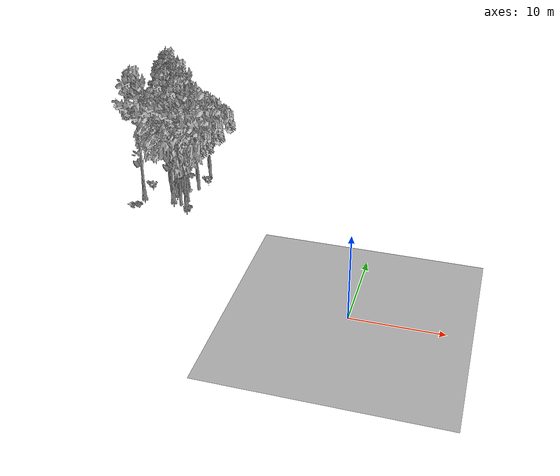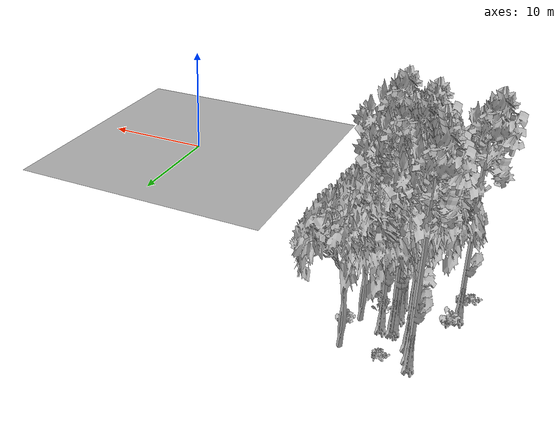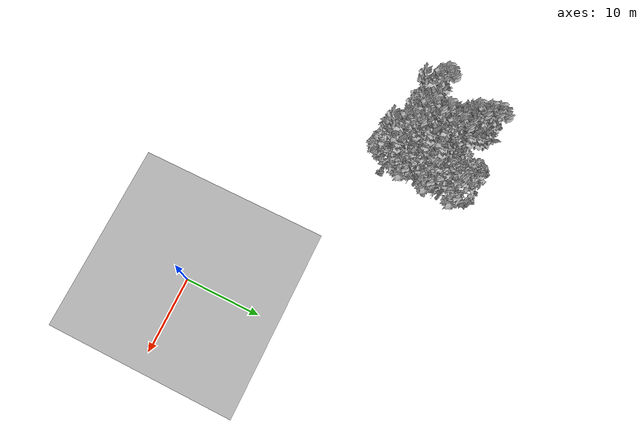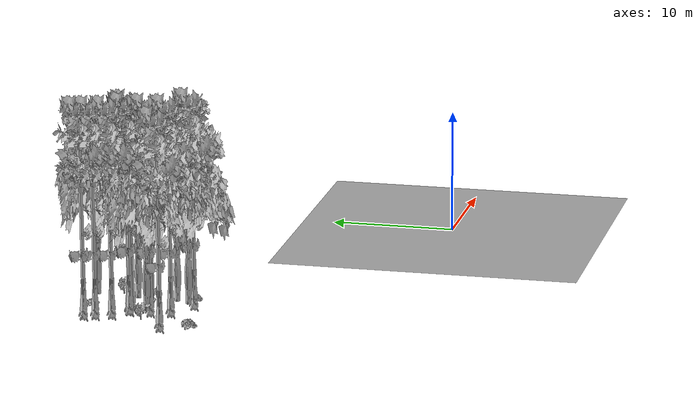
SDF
<sdf version="1.7">
 <world name="default">
  <model name="ground_plane">
   <static>1</static>
   <link name="link">
    <collision name="collision">
     <pose>-50 0 0 0 -0 0</pose>
     <geometry><plane><normal>0 0 1</normal><size>80 80</size></plane></geometry>
     <surface><contact><ode><min_depth>0.01</min_depth><max_vel>0</max_vel></ode></contact></surface>
    </collision>
    <visual name="grass">
     <cast_shadows>0</cast_shadows>
     <geometry>
      <mesh>
       <scale>0.46714285714285714 0.46714285714285714 0.1</scale>
       <uri>file://grass_plane/meshes/grass_plane.dae</uri>
      </mesh>
     </geometry>
    </visual>
   </link>
  </model>
  <model name="Tree 17">
   <static>1</static>
   <pose>-28.117833418078497 22.73537100807416 0 1.57079 -0 0</pose>
   <link name="link">
    <collision name="collision">
     <geometry><mesh><scale>3.5 5 3.5</scale><uri>model://tree_9/meshes/tree_9.obj</uri></mesh></geometry>
    </collision>
    <visual name="visual">
     <geometry><mesh><scale>3.5 5 3.5</scale><uri>model://tree_9/meshes/tree_9.obj</uri></mesh></geometry>
    </visual>
   </link>
  </model>
  <model name="Tree 82">
   <static>1</static>
   <pose>-24.011750463875202 15.826159937417614 0 1.57079 -0 0</pose>
   <link name="link">
    <collision name="collision">
     <geometry><mesh><scale>3.5 5 3.5</scale><uri>model://tree_9/meshes/tree_9.obj</uri></mesh></geometry>
    </collision>
    <visual name="visual">
     <geometry><mesh><scale>3.5 5 3.5</scale><uri>model://tree_9/meshes/tree_9.obj</uri></mesh></geometry>
    </visual>
   </link>
  </model>
  <model name="Tree 107">
   <static>1</static>
   <pose>-26.53338823590805 20.36984998128017 0 1.57079 -0 0</pose>
   <link name="link">
    <collision name="collision">
     <geometry><mesh><scale>3.5 5 3.5</scale><uri>model://tree_9/meshes/tree_9.obj</uri></mesh></geometry>
    </collision>
    <visual name="visual">
     <geometry><mesh><scale>3.5 5 3.5</scale><uri>model://tree_9/meshes/tree_9.obj</uri></mesh></geometry>
    </visual>
   </link>
  </model>
  <model name="Tree 129">
   <static>1</static>
   <pose>-24.38232008392984 17.095833453010776 0 1.57079 -0 0</pose>
   <link name="link">
    <collision name="collision">
     <geometry><mesh><scale>3.5 5 3.5</scale><uri>model://tree_2/meshes/tree_2.obj</uri></mesh></geometry>
    </collision>
    <visual name="visual">
     <geometry><mesh><scale>3.5 5 3.5</scale><uri>model://tree_2/meshes/tree_2.obj</uri></mesh></geometry>
    </visual>
   </link>
  </model>
  <model name="Tree 146">
   <static>1</static>
   <pose>-25.607080844035163 20.450444795925613 0 1.57079 -0 0</pose>
   <link name="link">
    <collision name="collision">
     <geometry><mesh><scale>3.5 5 3.5</scale><uri>model://tree_9/meshes/tree_9.obj</uri></mesh></geometry>
    </collision>
    <visual name="visual">
     <geometry><mesh><scale>3.5 5 3.5</scale><uri>model://tree_9/meshes/tree_9.obj</uri></mesh></geometry>
    </visual>
   </link>
  </model>
  <model name="Tree 165">
   <static>1</static>
   <pose>-26.377194681221937 20.470624154100136 0 1.57079 -0 0</pose>
   <link name="link">
    <collision name="collision">
     <geometry><mesh><scale>3.5 5 3.5</scale><uri>model://tree_9/meshes/tree_9.obj</uri></mesh></geometry>
    </collision>
    <visual name="visual">
     <geometry><mesh><scale>3.5 5 3.5</scale><uri>model://tree_9/meshes/tree_9.obj</uri></mesh></geometry>
    </visual>
   </link>
  </model>
  <model name="Tree 222">
   <static>1</static>
   <pose>-26.306359742739996 18.756188924256527 0 1.57079 -0 0</pose>
   <link name="link">
    <collision name="collision">
     <geometry><mesh><scale>3.5 5 3.5</scale><uri>model://tree_2/meshes/tree_2.obj</uri></mesh></geometry>
    </collision>
    <visual name="visual">
     <geometry><mesh><scale>3.5 5 3.5</scale><uri>model://tree_2/meshes/tree_2.obj</uri></mesh></geometry>
    </visual>
   </link>
  </model>
  <model name="Tree 245">
   <static>1</static>
   <pose>-24.181813434718848 20.31664708724601 0 1.57079 -0 0</pose>
   <link name="link">
    <collision name="collision">
     <geometry><mesh><scale>3.5 5 3.5</scale><uri>model://tree_2/meshes/tree_2.obj</uri></mesh></geometry>
    </collision>
    <visual name="visual">
     <geometry><mesh><scale>3.5 5 3.5</scale><uri>model://tree_2/meshes/tree_2.obj</uri></mesh></geometry>
    </visual>
   </link>
  </model>
  <model name="Tree 259">
   <static>1</static>
   <pose>-24.905128381503424 16.06560746780633 0 1.57079 -0 0</pose>
   <link name="link">
    <collision name="collision">
     <geometry><mesh><scale>3.5 5 3.5</scale><uri>model://tree_2/meshes/tree_2.obj</uri></mesh></geometry>
    </collision>
    <visual name="visual">
     <geometry><mesh><scale>3.5 5 3.5</scale><uri>model://tree_2/meshes/tree_2.obj</uri></mesh></geometry>
    </visual>
   </link>
  </model>
  <model name="Tree 286">
   <static>1</static>
   <pose>-27.309718436005163 18.81222466172958 0 1.57079 -0 0</pose>
   <link name="link">
    <collision name="collision">
     <geometry><mesh><scale>3.5 5 3.5</scale><uri>model://tree_2/meshes/tree_2.obj</uri></mesh></geometry>
    </collision>
    <visual name="visual">
     <geometry><mesh><scale>3.5 5 3.5</scale><uri>model://tree_2/meshes/tree_2.obj</uri></mesh></geometry>
    </visual>
   </link>
  </model>
  <model name="Tree 427">
   <static>1</static>
   <pose>-26.470456427232584 18.724803064214306 0 1.57079 -0 0</pose>
   <link name="link">
    <collision name="collision">
     <geometry><mesh><scale>3.5 5 3.5</scale><uri>model://tree_9/meshes/tree_9.obj</uri></mesh></geometry>
    </collision>
    <visual name="visual">
     <geometry><mesh><scale>3.5 5 3.5</scale><uri>model://tree_9/meshes/tree_9.obj</uri></mesh></geometry>
    </visual>
   </link>
  </model>
  <model name="Tree 429">
   <static>1</static>
   <pose>-30.179447177665928 16.997690881451078 0 1.57079 -0 0</pose>
   <link name="link">
    <collision name="collision">
     <geometry><mesh><scale>3.5 5 3.5</scale><uri>model://tree_9/meshes/tree_9.obj</uri></mesh></geometry>
    </collision>
    <visual name="visual">
     <geometry><mesh><scale>3.5 5 3.5</scale><uri>model://tree_9/meshes/tree_9.obj</uri></mesh></geometry>
    </visual>
   </link>
  </model>
  <model name="Tree 455">
   <static>1</static>
   <pose>-27.72481945238079 21.503959638129402 0 1.57079 -0 0</pose>
   <link name="link">
    <collision name="collision">
     <geometry><mesh><scale>3.5 5 3.5</scale><uri>model://tree_9/meshes/tree_9.obj</uri></mesh></geometry>
    </collision>
    <visual name="visual">
     <geometry><mesh><scale>3.5 5 3.5</scale><uri>model://tree_9/meshes/tree_9.obj</uri></mesh></geometry>
    </visual>
   </link>
  </model>
  <model name="Tree 491">
   <static>1</static>
   <pose>-28.391839404211876 23.59864874282684 0 1.57079 -0 0</pose>
   <link name="link">
    <collision name="collision">
     <geometry><mesh><scale>3.5 5 3.5</scale><uri>model://tree_9/meshes/tree_9.obj</uri></mesh></geometry>
    </collision>
    <visual name="visual">
     <geometry><mesh><scale>3.5 5 3.5</scale><uri>model://tree_9/meshes/tree_9.obj</uri></mesh></geometry>
    </visual>
   </link>
  </model>
  <model name="Tree 517">
   <static>1</static>
   <pose>-23.840024208951583 23.703553362665005 0 1.57079 -0 0</pose>
   <link name="link">
    <collision name="collision">
     <geometry><mesh><scale>3.5 5 3.5</scale><uri>model://tree_2/meshes/tree_2.obj</uri></mesh></geometry>
    </collision>
    <visual name="visual">
     <geometry><mesh><scale>3.5 5 3.5</scale><uri>model://tree_2/meshes/tree_2.obj</uri></mesh></geometry>
    </visual>
   </link>
  </model>
  <model name="Tree 611">
   <static>1</static>
   <pose>-26.277006843836002 17.124173694411127 0 1.57079 -0 0</pose>
   <link name="link">
    <collision name="collision">
     <geometry><mesh><scale>3.5 5 3.5</scale><uri>model://tree_9/meshes/tree_9.obj</uri></mesh></geometry>
    </collision>
    <visual name="visual">
     <geometry><mesh><scale>3.5 5 3.5</scale><uri>model://tree_9/meshes/tree_9.obj</uri></mesh></geometry>
    </visual>
   </link>
  </model>
  <model name="Bush 32">
   <static>1</static>
   <pose>-26.44546113346104 23.42214782833036 0 1.57079 -0 0</pose>
   <link name="link">
    <collision name="collision">
     <geometry><mesh><scale>2 2 2</scale><uri>model://bush_2/meshes/bush_2.obj</uri></mesh></geometry>
     <surface><contact><collide_without_contact>false</collide_without_contact></contact></surface>
    </collision>
    <visual name="visual">
     <geometry><mesh><scale>2 2 2</scale><uri>model://bush_2/meshes/bush_2.obj</uri></mesh></geometry>
    </visual>
   </link>
  </model>
  <model name="Bush 170">
   <static>1</static>
   <pose>-30.06618204713468 14.774969343759736 0 1.57079 -0 0</pose>
   <link name="link">
    <collision name="collision">
     <geometry><mesh><scale>2 2 2</scale><uri>model://bush_2/meshes/bush_2.obj</uri></mesh></geometry>
     <surface><contact><collide_without_contact>false</collide_without_contact></contact></surface>
    </collision>
    <visual name="visual">
     <geometry><mesh><scale>2 2 2</scale><uri>model://bush_2/meshes/bush_2.obj</uri></mesh></geometry>
    </visual>
   </link>
  </model>
  <model name="Bush 204">
   <static>1</static>
   <pose>-23.75592658477929 15.748634344386062 0 1.57079 -0 0</pose>
   <link name="link">
    <collision name="collision">
     <geometry><mesh><scale>2 2 2</scale><uri>model://bush_2/meshes/bush_2.obj</uri></mesh></geometry>
     <surface><contact><collide_without_contact>false</collide_without_contact></contact></surface>
    </collision>
    <visual name="visual">
     <geometry><mesh><scale>2 2 2</scale><uri>model://bush_2/meshes/bush_2.obj</uri></mesh></geometry>
    </visual>
   </link>
  </model>
  <model name="Bush 211">
   <static>1</static>
   <pose>-23.282588395457594 21.719201168304267 0 1.57079 -0 0</pose>
   <link name="link">
    <collision name="collision">
     <geometry><mesh><scale>2 2 2</scale><uri>model://bush_0/meshes/bush_0.obj</uri></mesh></geometry>
     <surface><contact><collide_without_contact>false</collide_without_contact></contact></surface>
    </collision>
    <visual name="visual">
     <geometry><mesh><scale>2 2 2</scale><uri>model://bush_0/meshes/bush_0.obj</uri></mesh></geometry>
    </visual>
   </link>
  </model>
  <model name="Bush 229">
   <static>1</static>
   <pose>-29.67628645490263 18.63642769595367 0 1.57079 -0 0</pose>
   <link name="link">
    <collision name="collision">
     <geometry><mesh><scale>2 2 2</scale><uri>model://bush_0/meshes/bush_0.obj</uri></mesh></geometry>
     <surface><contact><collide_without_contact>false</collide_without_contact></contact></surface>
    </collision>
    <visual name="visual">
     <geometry><mesh><scale>2 2 2</scale><uri>model://bush_0/meshes/bush_0.obj</uri></mesh></geometry>
    </visual>
   </link>
  </model>
  <model name="Bush 392">
   <static>1</static>
   <pose>-25.277248430868646 18.868679277564375 0 1.57079 -0 0</pose>
   <link name="link">
    <collision name="collision">
     <geometry><mesh><scale>2 2 2</scale><uri>model://bush_4/meshes/bush_4.obj</uri></mesh></geometry>
     <surface><contact><collide_without_contact>false</collide_without_contact></contact></surface>
    </collision>
    <visual name="visual">
     <geometry><mesh><scale>2 2 2</scale><uri>model://bush_4/meshes/bush_4.obj</uri></mesh></geometry>
    </visual>
   </link>
  </model>
  <model name="Bush 439">
   <static>1</static>
   <pose>-30.667695915837616 14.418669731112402 0 1.57079 -0 0</pose>
   <link name="link">
    <collision name="collision">
     <geometry><mesh><scale>2 2 2</scale><uri>model://bush_2/meshes/bush_2.obj</uri></mesh></geometry>
     <surface><contact><collide_without_contact>false</collide_without_contact></contact></surface>
    </collision>
    <visual name="visual">
     <geometry><mesh><scale>2 2 2</scale><uri>model://bush_2/meshes/bush_2.obj</uri></mesh></geometry>
    </visual>
   </link>
  </model>
 </world>
</sdf>
